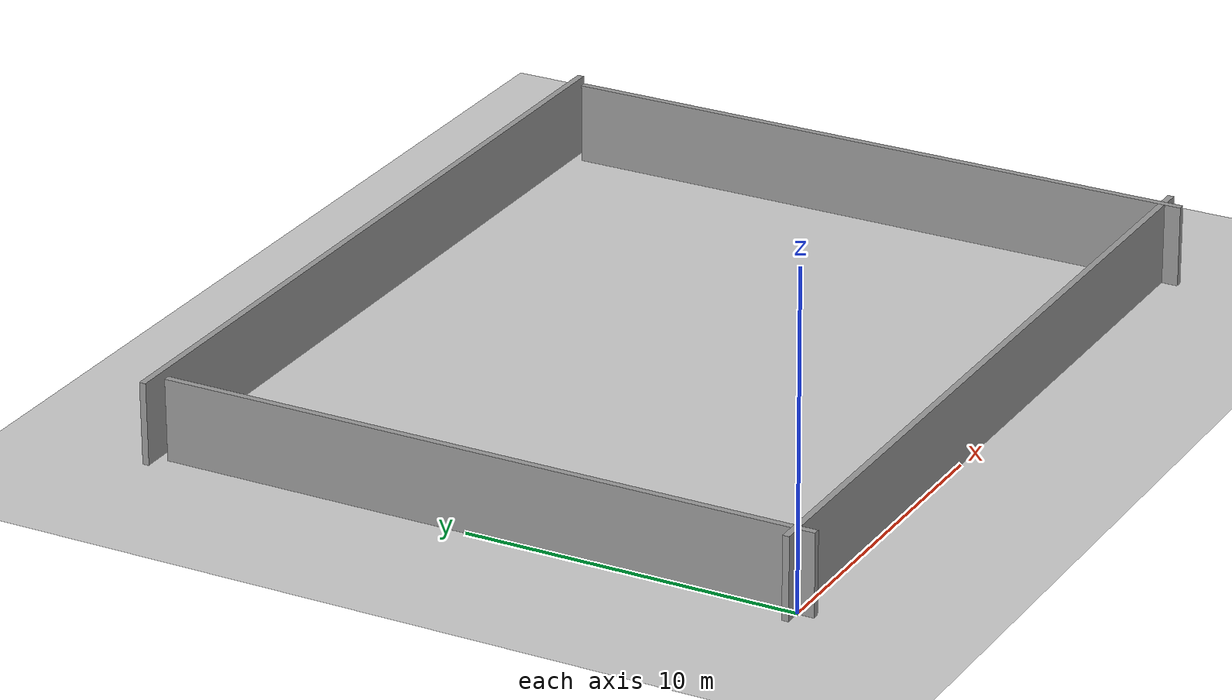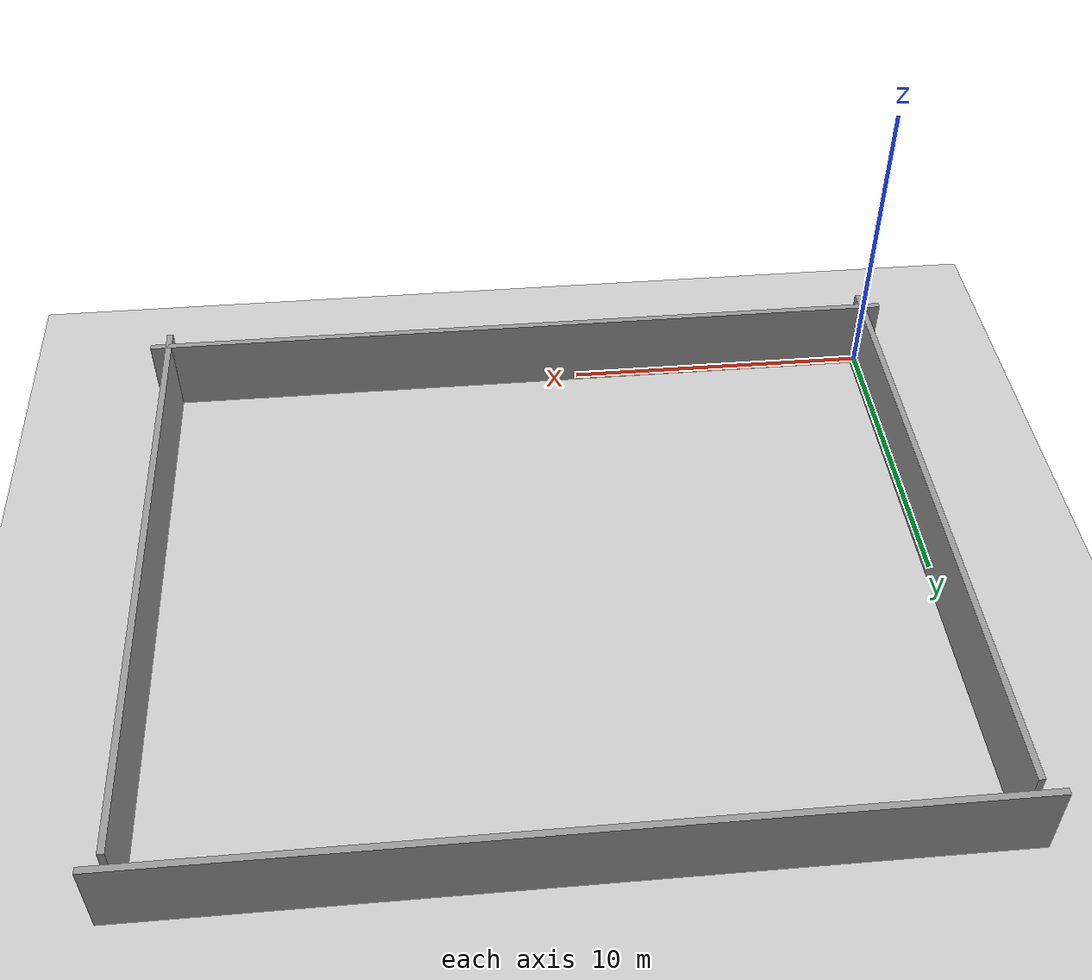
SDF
<?xml version="1.0" ?>
<sdf version="1.10">
  <world name="warehouse_s5">

    <!-- ── Physics ─────────────────────────────────────────────────────── -->
    <physics name="default" type="ode">
      <real_time_update_rate>1000</real_time_update_rate>
      <max_step_size>0.001</max_step_size>
      <real_time_factor>1.0</real_time_factor>
      <ode>
        <solver>
          <type>quick</type>
          <iters>50</iters>
          <sor>1.3</sor>
        </solver>
        <constraints>
          <cfm>0</cfm>
          <erp>0.2</erp>
          <contact_max_correcting_vel>100</contact_max_correcting_vel>
          <contact_surface_layer>0.001</contact_surface_layer>
        </constraints>
      </ode>
    </physics>

    <!-- ── Plugins ─────────────────────────────────────────────────────── -->
    <plugin filename="gz-sim-physics-system" name="gz::sim::systems::Physics"/>
    <plugin filename="gz-sim-user-commands-system" name="gz::sim::systems::UserCommands"/>
    <plugin filename="gz-sim-scene-broadcaster-system" name="gz::sim::systems::SceneBroadcaster"/>
    <plugin filename="gz-sim-sensors-system" name="gz::sim::systems::Sensors">
      <render_engine>ogre2</render_engine>
    </plugin>
    <plugin filename="gz-sim-imu-system" name="gz::sim::systems::Imu"/>
    <plugin filename="gz-sim-contact-system" name="gz::sim::systems::Contact"/>

    <!-- ── Gravity ─────────────────────────────────────────────────────── -->
    <gravity>0 0 -9.81</gravity>
    <magnetic_field>6e-06 2.3e-05 -4.2e-05</magnetic_field>
    <atmosphere type="adiabatic"/>

    <!-- ── Scene ───────────────────────────────────────────────────────── -->
    <scene>
      <ambient>0.4 0.4 0.4 1</ambient>
      <background>0.7 0.7 0.7 1</background>
      <shadows>true</shadows>
    </scene>

    <!-- ── Sun ─────────────────────────────────────────────────────────── -->
    <light name="sun" type="directional">
      <cast_shadows>true</cast_shadows>
      <pose>0 0 10 0 0 0</pose>
      <diffuse>0.8 0.8 0.8 1</diffuse>
      <specular>0.2 0.2 0.2 1</specular>
      <attenuation>
        <range>1000</range>
        <constant>0.9</constant>
        <linear>0.01</linear>
        <quadratic>0.001</quadratic>
      </attenuation>
      <direction>-0.5 0.1 -0.9</direction>
    </light>

    <!-- ── Ground plane (25m × 20m warehouse floor) ─────────────────────── -->
    <model name="ground_plane">
      <static>true</static>
      <link name="link">
        <collision name="collision">
          <geometry>
            <plane>
              <normal>0 0 1</normal>
              <size>25 20</size>
            </plane>
          </geometry>
        </collision>
        <visual name="visual">
          <geometry>
            <plane>
              <normal>0 0 1</normal>
              <size>25 20</size>
            </plane>
          </geometry>
          <material>
            <ambient>0.8 0.8 0.8 1</ambient>
            <diffuse>0.8 0.8 0.8 1</diffuse>
            <specular>0.01 0.01 0.01 1</specular>
          </material>
        </visual>
        <pose>12.0 9.5 0 0 0 0</pose>
      </link>
    </model>

    <!-- ── Perimeter Walls ─────────────────────────────────────────────── -->

    <!-- West wall (x=0) -->
    <model name="wall_west">
      <static>true</static>
      <pose>0.1 9.5 1.25 0 0 0</pose>
      <link name="link">
        <collision name="collision">
          <geometry><box><size>0.2 20.0 2.5</size></box></geometry>
        </collision>
        <visual name="visual">
          <geometry><box><size>0.2 20.0 2.5</size></box></geometry>
          <material>
            <ambient>0.6 0.6 0.6 1</ambient>
            <diffuse>0.6 0.6 0.6 1</diffuse>
          </material>
        </visual>
      </link>
    </model>

    <!-- East wall (x=24) -->
    <model name="wall_east">
      <static>true</static>
      <pose>23.9 9.5 1.25 0 0 0</pose>
      <link name="link">
        <collision name="collision">
          <geometry><box><size>0.2 20.0 2.5</size></box></geometry>
        </collision>
        <visual name="visual">
          <geometry><box><size>0.2 20.0 2.5</size></box></geometry>
          <material>
            <ambient>0.6 0.6 0.6 1</ambient>
            <diffuse>0.6 0.6 0.6 1</diffuse>
          </material>
        </visual>
      </link>
    </model>

    <!-- South wall -->
    <model name="wall_south">
      <static>true</static>
      <pose>12.0 19.9 1.25 0 0 0</pose>
      <link name="link">
        <collision name="collision">
          <geometry><box><size>25.0 0.2 2.5</size></box></geometry>
        </collision>
        <visual name="visual">
          <geometry><box><size>25.0 0.2 2.5</size></box></geometry>
          <material>
            <ambient>0.6 0.6 0.6 1</ambient>
            <diffuse>0.6 0.6 0.6 1</diffuse>
          </material>
        </visual>
      </link>
    </model>

    <!-- North wall -->
    <model name="wall_north">
      <static>true</static>
      <pose>12.0 0.1 1.25 0 0 0</pose>
      <link name="link">
        <collision name="collision">
          <geometry><box><size>25.0 0.2 2.5</size></box></geometry>
        </collision>
        <visual name="visual">
          <geometry><box><size>25.0 0.2 2.5</size></box></geometry>
          <material>
            <ambient>0.6 0.6 0.6 1</ambient>
            <diffuse>0.6 0.6 0.6 1</diffuse>
          </material>
        </visual>
      </link>
    </model>

  </world>
</sdf>
